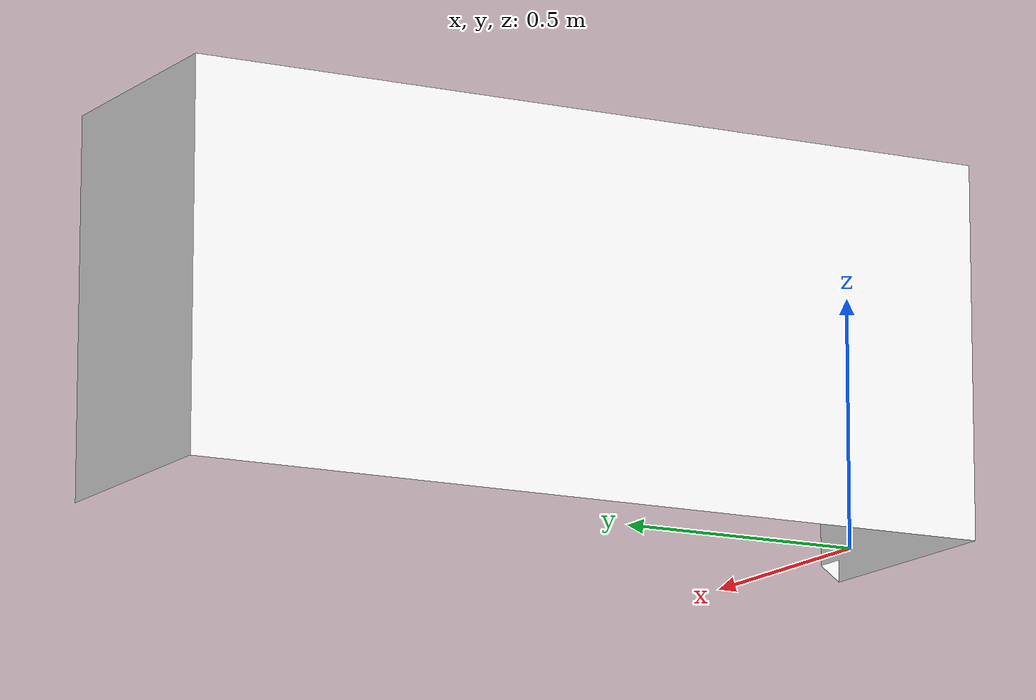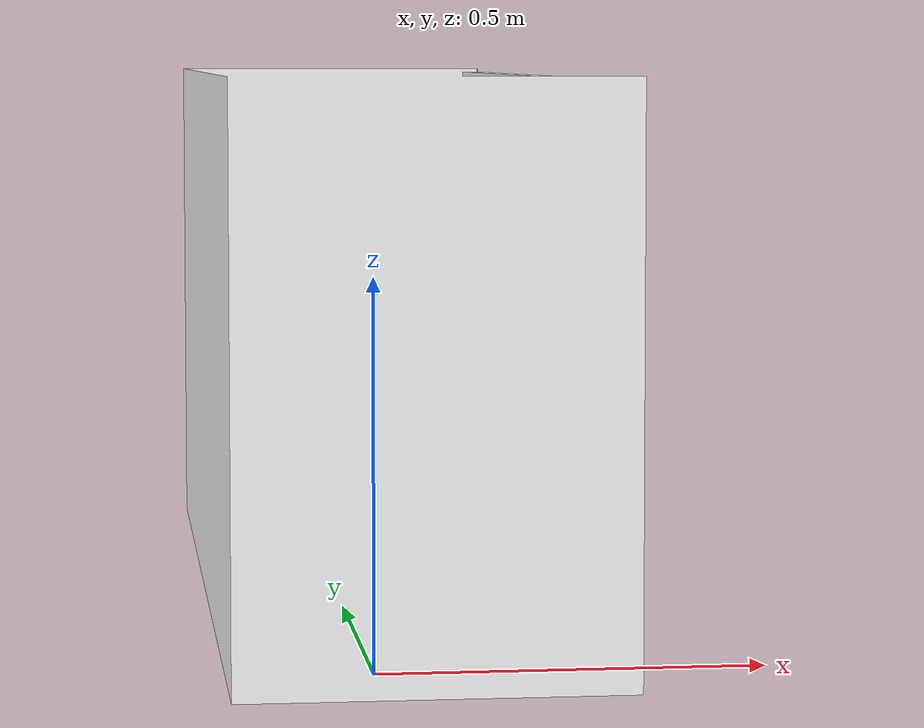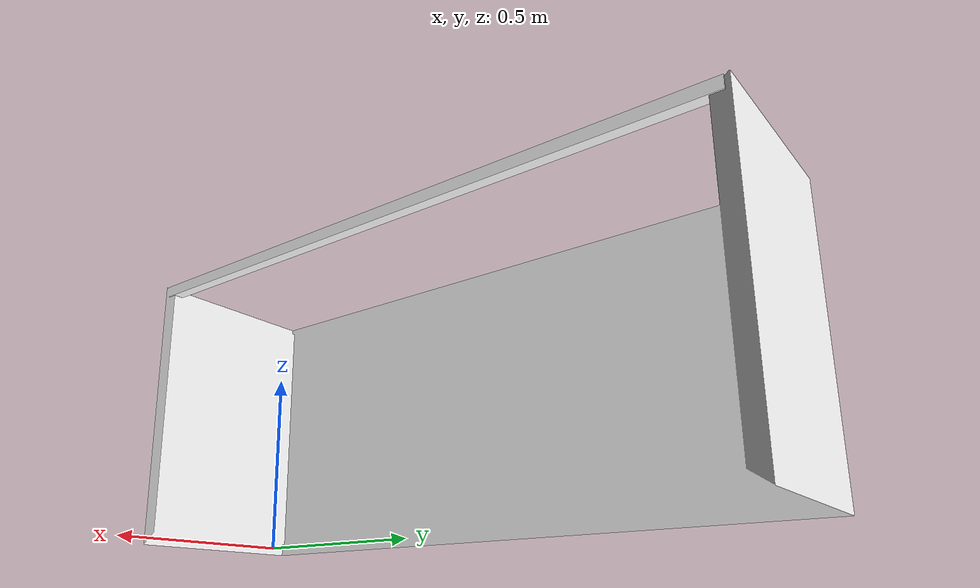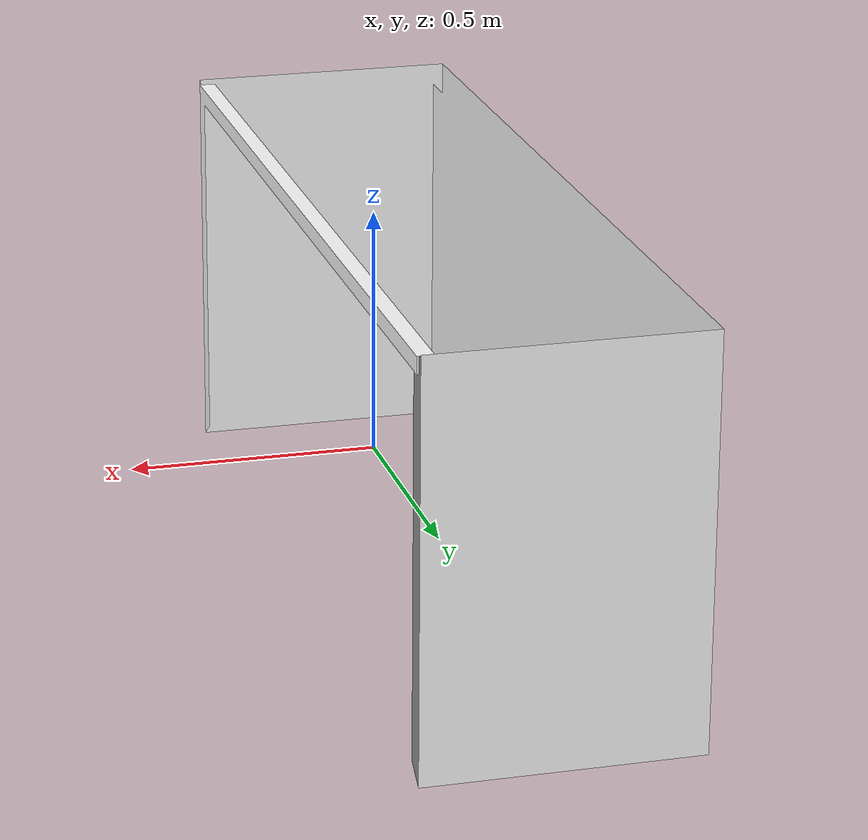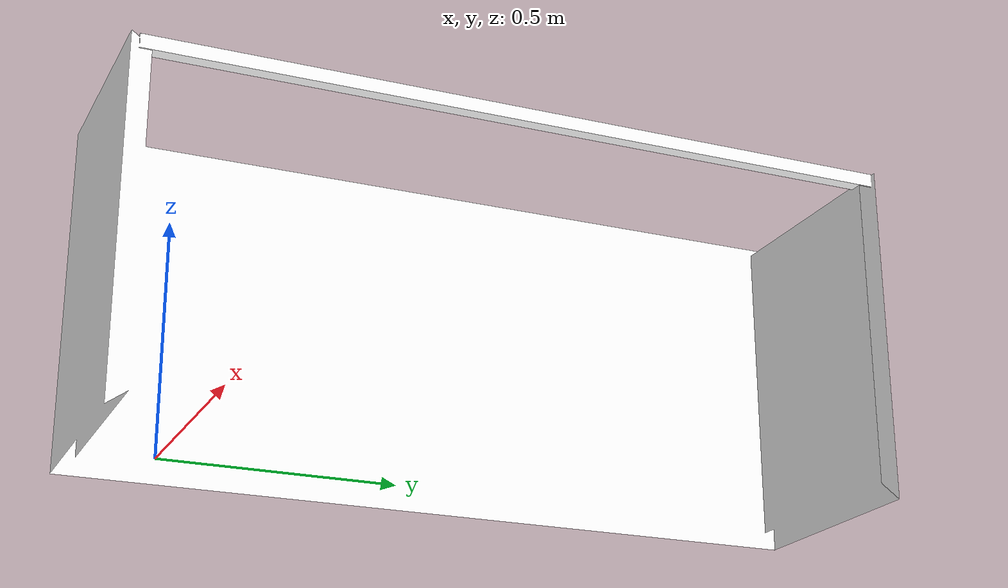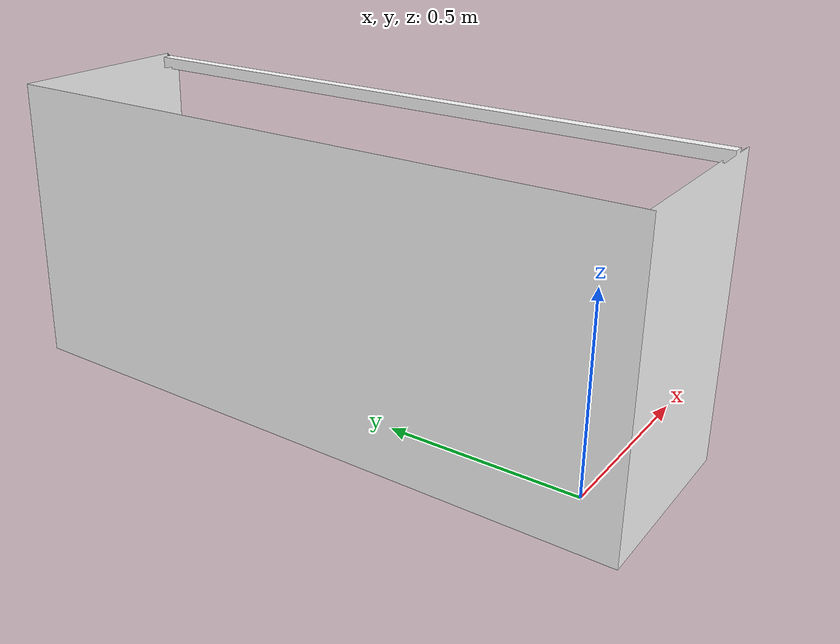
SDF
<?xml version="1.0" ?>
<sdf version="1.4">
  <model name="YellowGoal">
    <pose>0 0 0  0 0 0</pose>
    <static>true</static>
    <link name="link">
      <collision name="collision">
        <geometry>
          <mesh>
            <uri>model://yellow_goal/meshes/YellowGoal.DAE</uri>
          </mesh>
        </geometry>
      </collision>
      <visual name="visual">
        <geometry>
          <mesh>
            <uri>model://yellow_goal/meshes/YellowGoal.DAE</uri>
            <scale>1 1.4 1</scale>
          </mesh>
        </geometry>
      </visual>
    </link>
  <plugin filename="libobj_pub_plugin.so" name="obj_pub_plugin"/>
  </model>
</sdf>
